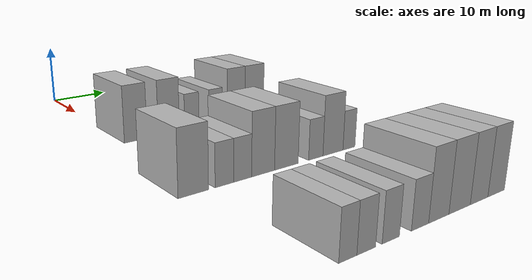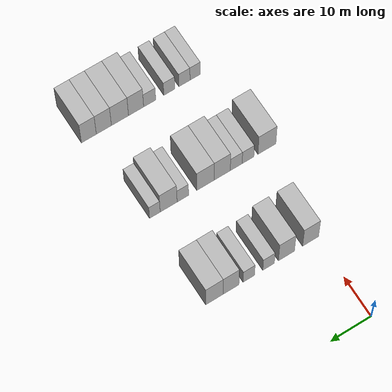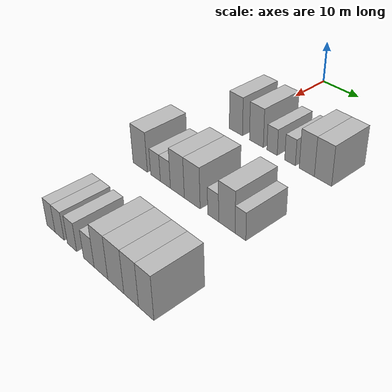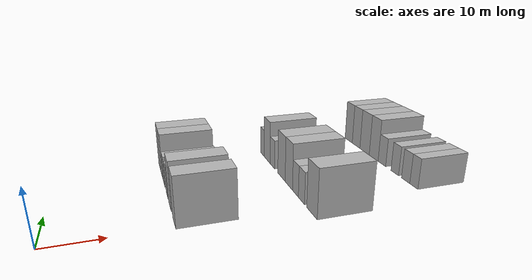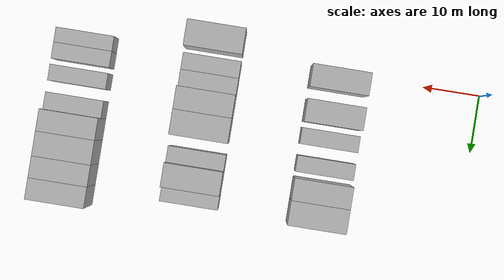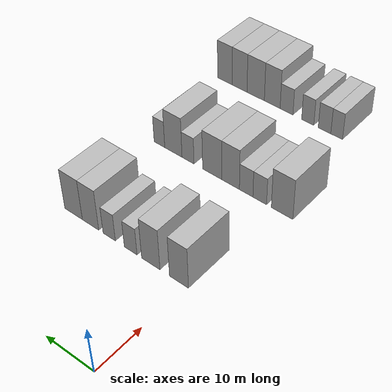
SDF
<sdf version="1.6">
 <world name="default">
  <model name="building_65">
   <static>1</static>
   <pose>25.0000 1.4582 0 0.000000 0.000000 0.000000</pose>
   <link name="link">
    <pose>0 0 4.50 0 0 0</pose>
    <collision name="collision"><geometry><box><size>10.0000 3.9089 9.0000</size></box></geometry></collision>
    <visual name="visual">
     <cast_shadows>0</cast_shadows>
     <geometry><box><size>10.0000 3.9089 9.0000</size></box></geometry>
     <material>
      <script>
       <uri>model://HANNAS_wall/materials/scripts</uri>
       <uri>model://HANNAS_wall/materials/textures</uri>
       <name>vrc/HANNAS_wall</name>
      </script>
     </material>
    </visual>
   </link>
  </model>
  <model name="building_66">
   <static>1</static>
   <pose>25.0000 7.3703 0 0.000000 0.000000 0.000000</pose>
   <link name="link">
    <pose>0 0 4.50 0 0 0</pose>
    <collision name="collision"><geometry><box><size>10.0000 3.9153 9.0000</size></box></geometry></collision>
    <visual name="visual">
     <cast_shadows>0</cast_shadows>
     <geometry><box><size>10.0000 3.9153 9.0000</size></box></geometry>
     <material>
      <script>
       <uri>model://HANNAS_wall/materials/scripts</uri>
       <uri>model://HANNAS_wall/materials/textures</uri>
       <name>vrc/HANNAS_wall</name>
      </script>
     </material>
    </visual>
   </link>
  </model>
  <model name="building_67">
   <static>1</static>
   <pose>25.0000 11.7263 0 0.000000 0.000000 0.000000</pose>
   <link name="link">
    <pose>0 0 3.00 0 0 0</pose>
    <collision name="collision"><geometry><box><size>10.0000 2.7966 6.0000</size></box></geometry></collision>
    <visual name="visual">
     <cast_shadows>0</cast_shadows>
     <geometry><box><size>10.0000 2.7966 6.0000</size></box></geometry>
     <material>
      <script>
       <uri>model://HANNAS_wall/materials/scripts</uri>
       <uri>model://HANNAS_wall/materials/textures</uri>
       <name>vrc/HANNAS_wall</name>
      </script>
     </material>
    </visual>
   </link>
  </model>
  <model name="building_68">
   <static>1</static>
   <pose>25.0000 16.5126 0 0.000000 0.000000 0.000000</pose>
   <link name="link">
    <pose>0 0 3.00 0 0 0</pose>
    <collision name="collision"><geometry><box><size>10.0000 2.7760 6.0000</size></box></geometry></collision>
    <visual name="visual">
     <cast_shadows>0</cast_shadows>
     <geometry><box><size>10.0000 2.7760 6.0000</size></box></geometry>
     <material>
      <script>
       <uri>model://HANNAS_wall/materials/scripts</uri>
       <uri>model://HANNAS_wall/materials/textures</uri>
       <name>vrc/HANNAS_wall</name>
      </script>
     </material>
    </visual>
   </link>
  </model>
  <model name="building_69">
   <static>1</static>
   <pose>25.0000 20.8025 0 0.000000 0.000000 0.000000</pose>
   <link name="link">
    <pose>0 0 4.50 0 0 0</pose>
    <collision name="collision"><geometry><box><size>10.0000 3.8038 9.0000</size></box></geometry></collision>
    <visual name="visual">
     <cast_shadows>0</cast_shadows>
     <geometry><box><size>10.0000 3.8038 9.0000</size></box></geometry>
     <material>
      <script>
       <uri>model://HANNAS_wall/materials/scripts</uri>
       <uri>model://HANNAS_wall/materials/textures</uri>
       <name>vrc/HANNAS_wall</name>
      </script>
     </material>
    </visual>
   </link>
  </model>
  <model name="building_70">
   <static>1</static>
   <pose>25.0000 24.7926 0 0.000000 0.000000 0.000000</pose>
   <link name="link">
    <pose>0 0 4.50 0 0 0</pose>
    <collision name="collision"><geometry><box><size>10.0000 4.1765 9.0000</size></box></geometry></collision>
    <visual name="visual">
     <cast_shadows>0</cast_shadows>
     <geometry><box><size>10.0000 4.1765 9.0000</size></box></geometry>
     <material>
      <script>
       <uri>model://HANNAS_wall/materials/scripts</uri>
       <uri>model://HANNAS_wall/materials/textures</uri>
       <name>vrc/HANNAS_wall</name>
      </script>
     </material>
    </visual>
   </link>
  </model>
  <model name="building_181">
   <static>1</static>
   <pose>47.0000 -2.2546 0 0.000000 0.000000 0.000000</pose>
   <link name="link">
    <pose>0 0 4.50 0 0 0</pose>
    <collision name="collision"><geometry><box><size>10.0000 4.4609 9.0000</size></box></geometry></collision>
    <visual name="visual">
     <cast_shadows>0</cast_shadows>
     <geometry><box><size>10.0000 4.4609 9.0000</size></box></geometry>
     <material>
      <script>
       <uri>model://HANNAS_wall/materials/scripts</uri>
       <uri>model://HANNAS_wall/materials/textures</uri>
       <name>vrc/HANNAS_wall</name>
      </script>
     </material>
    </visual>
   </link>
  </model>
  <model name="building_182">
   <static>1</static>
   <pose>47.0000 2.4303 0 0.000000 0.000000 0.000000</pose>
   <link name="link">
    <pose>0 0 3.00 0 0 0</pose>
    <collision name="collision"><geometry><box><size>10.0000 2.9088 6.0000</size></box></geometry></collision>
    <visual name="visual">
     <cast_shadows>0</cast_shadows>
     <geometry><box><size>10.0000 2.9088 6.0000</size></box></geometry>
     <material>
      <script>
       <uri>model://HANNAS_wall/materials/scripts</uri>
       <uri>model://HANNAS_wall/materials/textures</uri>
       <name>vrc/HANNAS_wall</name>
      </script>
     </material>
    </visual>
   </link>
  </model>
  <model name="building_183">
   <static>1</static>
   <pose>47.0000 5.3531 0 0.000000 0.000000 0.000000</pose>
   <link name="link">
    <pose>0 0 3.00 0 0 0</pose>
    <collision name="collision"><geometry><box><size>10.0000 2.9368 6.0000</size></box></geometry></collision>
    <visual name="visual">
     <cast_shadows>0</cast_shadows>
     <geometry><box><size>10.0000 2.9368 6.0000</size></box></geometry>
     <material>
      <script>
       <uri>model://HANNAS_wall/materials/scripts</uri>
       <uri>model://HANNAS_wall/materials/textures</uri>
       <name>vrc/HANNAS_wall</name>
      </script>
     </material>
    </visual>
   </link>
  </model>
  <model name="building_184">
   <static>1</static>
   <pose>47.0000 8.7923 0 0.000000 0.000000 0.000000</pose>
   <link name="link">
    <pose>0 0 4.50 0 0 0</pose>
    <collision name="collision"><geometry><box><size>10.0000 3.9415 9.0000</size></box></geometry></collision>
    <visual name="visual">
     <cast_shadows>0</cast_shadows>
     <geometry><box><size>10.0000 3.9415 9.0000</size></box></geometry>
     <material>
      <script>
       <uri>model://HANNAS_wall/materials/scripts</uri>
       <uri>model://HANNAS_wall/materials/textures</uri>
       <name>vrc/HANNAS_wall</name>
      </script>
     </material>
    </visual>
   </link>
  </model>
  <model name="building_185">
   <static>1</static>
   <pose>47.0000 12.9120 0 0.000000 0.000000 0.000000</pose>
   <link name="link">
    <pose>0 0 4.50 0 0 0</pose>
    <collision name="collision"><geometry><box><size>10.0000 4.2980 9.0000</size></box></geometry></collision>
    <visual name="visual">
     <cast_shadows>0</cast_shadows>
     <geometry><box><size>10.0000 4.2980 9.0000</size></box></geometry>
     <material>
      <script>
       <uri>model://HANNAS_wall/materials/scripts</uri>
       <uri>model://HANNAS_wall/materials/textures</uri>
       <name>vrc/HANNAS_wall</name>
      </script>
     </material>
    </visual>
   </link>
  </model>
  <model name="building_186">
   <static>1</static>
   <pose>47.0000 18.4659 0 0.000000 0.000000 0.000000</pose>
   <link name="link">
    <pose>0 0 3.00 0 0 0</pose>
    <collision name="collision"><geometry><box><size>10.0000 2.8098 6.0000</size></box></geometry></collision>
    <visual name="visual">
     <cast_shadows>0</cast_shadows>
     <geometry><box><size>10.0000 2.8098 6.0000</size></box></geometry>
     <material>
      <script>
       <uri>model://HANNAS_wall/materials/scripts</uri>
       <uri>model://HANNAS_wall/materials/textures</uri>
       <name>vrc/HANNAS_wall</name>
      </script>
     </material>
    </visual>
   </link>
  </model>
  <model name="building_187">
   <static>1</static>
   <pose>47.0000 21.9285 0 0.000000 0.000000 0.000000</pose>
   <link name="link">
    <pose>0 0 4.50 0 0 0</pose>
    <collision name="collision"><geometry><box><size>10.0000 4.1155 9.0000</size></box></geometry></collision>
    <visual name="visual">
     <cast_shadows>0</cast_shadows>
     <geometry><box><size>10.0000 4.1155 9.0000</size></box></geometry>
     <material>
      <script>
       <uri>model://HANNAS_wall/materials/scripts</uri>
       <uri>model://HANNAS_wall/materials/textures</uri>
       <name>vrc/HANNAS_wall</name>
      </script>
     </material>
    </visual>
   </link>
  </model>
  <model name="building_188">
   <static>1</static>
   <pose>47.0000 25.2718 0 0.000000 0.000000 0.000000</pose>
   <link name="link">
    <pose>0 0 3.00 0 0 0</pose>
    <collision name="collision"><geometry><box><size>10.0000 2.5711 6.0000</size></box></geometry></collision>
    <visual name="visual">
     <cast_shadows>0</cast_shadows>
     <geometry><box><size>10.0000 2.5711 6.0000</size></box></geometry>
     <material>
      <script>
       <uri>model://HANNAS_wall/materials/scripts</uri>
       <uri>model://HANNAS_wall/materials/textures</uri>
       <name>vrc/HANNAS_wall</name>
      </script>
     </material>
    </visual>
   </link>
  </model>
  <model name="building_304">
   <static>1</static>
   <pose>69.0000 1.4948 0 0.000000 0.000000 0.000000</pose>
   <link name="link">
    <pose>0 0 3.00 0 0 0</pose>
    <collision name="collision"><geometry><box><size>10.0000 2.5739 6.0000</size></box></geometry></collision>
    <visual name="visual">
     <cast_shadows>0</cast_shadows>
     <geometry><box><size>10.0000 2.5739 6.0000</size></box></geometry>
     <material>
      <script>
       <uri>model://HANNAS_wall/materials/scripts</uri>
       <uri>model://HANNAS_wall/materials/textures</uri>
       <name>vrc/HANNAS_wall</name>
      </script>
     </material>
    </visual>
   </link>
  </model>
  <model name="building_305">
   <static>1</static>
   <pose>69.0000 4.1797 0 0.000000 0.000000 0.000000</pose>
   <link name="link">
    <pose>0 0 3.00 0 0 0</pose>
    <collision name="collision"><geometry><box><size>10.0000 2.7959 6.0000</size></box></geometry></collision>
    <visual name="visual">
     <cast_shadows>0</cast_shadows>
     <geometry><box><size>10.0000 2.7959 6.0000</size></box></geometry>
     <material>
      <script>
       <uri>model://HANNAS_wall/materials/scripts</uri>
       <uri>model://HANNAS_wall/materials/textures</uri>
       <name>vrc/HANNAS_wall</name>
      </script>
     </material>
    </visual>
   </link>
  </model>
  <model name="building_306">
   <static>1</static>
   <pose>69.0000 7.9565 0 0.000000 0.000000 0.000000</pose>
   <link name="link">
    <pose>0 0 3.00 0 0 0</pose>
    <collision name="collision"><geometry><box><size>10.0000 2.7578 6.0000</size></box></geometry></collision>
    <visual name="visual">
     <cast_shadows>0</cast_shadows>
     <geometry><box><size>10.0000 2.7578 6.0000</size></box></geometry>
     <material>
      <script>
       <uri>model://HANNAS_wall/materials/scripts</uri>
       <uri>model://HANNAS_wall/materials/textures</uri>
       <name>vrc/HANNAS_wall</name>
      </script>
     </material>
    </visual>
   </link>
  </model>
  <model name="building_307">
   <static>1</static>
   <pose>69.0000 12.8339 0 0.000000 0.000000 0.000000</pose>
   <link name="link">
    <pose>0 0 3.00 0 0 0</pose>
    <collision name="collision"><geometry><box><size>10.0000 2.9971 6.0000</size></box></geometry></collision>
    <visual name="visual">
     <cast_shadows>0</cast_shadows>
     <geometry><box><size>10.0000 2.9971 6.0000</size></box></geometry>
     <material>
      <script>
       <uri>model://HANNAS_wall/materials/scripts</uri>
       <uri>model://HANNAS_wall/materials/textures</uri>
       <name>vrc/HANNAS_wall</name>
      </script>
     </material>
    </visual>
   </link>
  </model>
  <model name="building_308">
   <static>1</static>
   <pose>69.0000 16.2018 0 0.000000 0.000000 0.000000</pose>
   <link name="link">
    <pose>0 0 4.50 0 0 0</pose>
    <collision name="collision"><geometry><box><size>10.0000 3.7387 9.0000</size></box></geometry></collision>
    <visual name="visual">
     <cast_shadows>0</cast_shadows>
     <geometry><box><size>10.0000 3.7387 9.0000</size></box></geometry>
     <material>
      <script>
       <uri>model://HANNAS_wall/materials/scripts</uri>
       <uri>model://HANNAS_wall/materials/textures</uri>
       <name>vrc/HANNAS_wall</name>
      </script>
     </material>
    </visual>
   </link>
  </model>
  <model name="building_309">
   <static>1</static>
   <pose>69.0000 20.1738 0 0.000000 0.000000 0.000000</pose>
   <link name="link">
    <pose>0 0 4.50 0 0 0</pose>
    <collision name="collision"><geometry><box><size>10.0000 4.2053 9.0000</size></box></geometry></collision>
    <visual name="visual">
     <cast_shadows>0</cast_shadows>
     <geometry><box><size>10.0000 4.2053 9.0000</size></box></geometry>
     <material>
      <script>
       <uri>model://HANNAS_wall/materials/scripts</uri>
       <uri>model://HANNAS_wall/materials/textures</uri>
       <name>vrc/HANNAS_wall</name>
      </script>
     </material>
    </visual>
   </link>
  </model>
  <model name="building_310">
   <static>1</static>
   <pose>69.0000 24.1220 0 0.000000 0.000000 0.000000</pose>
   <link name="link">
    <pose>0 0 4.50 0 0 0</pose>
    <collision name="collision"><geometry><box><size>10.0000 3.6912 9.0000</size></box></geometry></collision>
    <visual name="visual">
     <cast_shadows>0</cast_shadows>
     <geometry><box><size>10.0000 3.6912 9.0000</size></box></geometry>
     <material>
      <script>
       <uri>model://HANNAS_wall/materials/scripts</uri>
       <uri>model://HANNAS_wall/materials/textures</uri>
       <name>vrc/HANNAS_wall</name>
      </script>
     </material>
    </visual>
   </link>
  </model>
  <model name="building_311">
   <static>1</static>
   <pose>69.0000 27.7928 0 0.000000 0.000000 0.000000</pose>
   <link name="link">
    <pose>0 0 4.50 0 0 0</pose>
    <collision name="collision"><geometry><box><size>10.0000 3.6505 9.0000</size></box></geometry></collision>
    <visual name="visual">
     <cast_shadows>0</cast_shadows>
     <geometry><box><size>10.0000 3.6505 9.0000</size></box></geometry>
     <material>
      <script>
       <uri>model://HANNAS_wall/materials/scripts</uri>
       <uri>model://HANNAS_wall/materials/textures</uri>
       <name>vrc/HANNAS_wall</name>
      </script>
     </material>
    </visual>
   </link>
  </model>
 </world>
</sdf>
